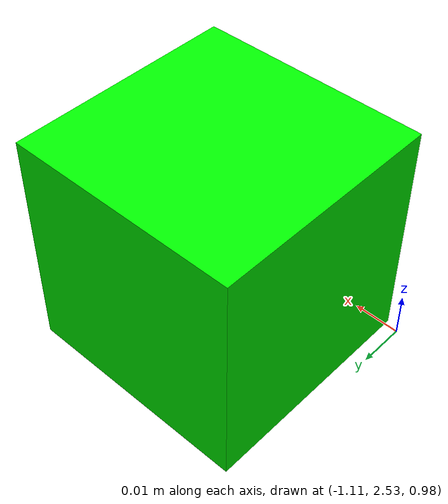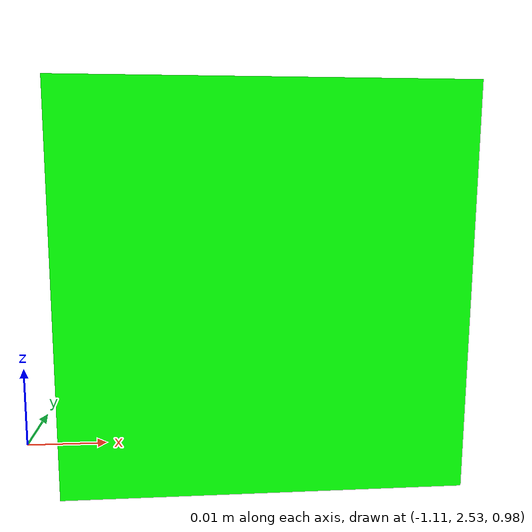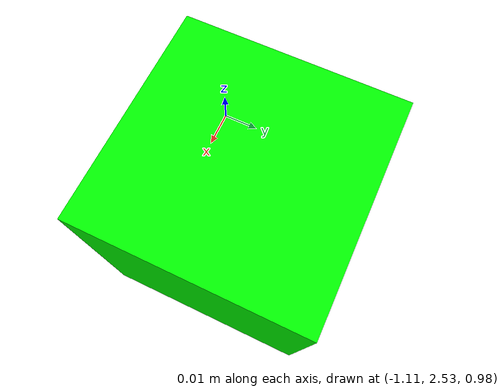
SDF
<sdf version='1.6'>
    <model name='my_box'>
        <pose>-1.08 2.55 1.0 0 0 0</pose>
        <link name='link'>
            <inertial>
                <mass>0.1</mass>
                <inertia>
                    <ixx>0.00004166667</ixx>
                    <iyy>0.00004166667</iyy>
                    <izz>0.00004166667</izz>
                </inertia>
            </inertial>
            <collision name='collision'>
                <geometry>
                    <box>
                        <size>0.05 0.05 0.05</size>
                    </box>
                </geometry>
                <max_contacts>10</max_contacts>
                <surface>
                    <contact>
                        <ode>
                            <max_vel>5.0</max_vel>
                            <min_depth>0.001</min_depth>
                            <kp>10000</kp>
                            <kd>0</kd>
                        </ode>
                    </contact>

                    <bounce>
                        <restitution_coefficient>0.5</restitution_coefficient>                        <!-- "max_vel" must be higher than 0.0 -->
                        <threshold>0.01</threshold>
                    </bounce>

                    <friction>
                        <ode>
                            <mu>0.95</mu>
                            <mu2>0.95</mu2>
                        </ode>
                    </friction>
                </surface>
            </collision>
            <visual name='visual'>
                <geometry>
                    <box>
                        <size>0.05 0.05 0.05</size>
                    </box>
                </geometry>
                <material>
                    <ambient>0 1 0 1</ambient>                    <!-- Green color -->
                </material>
            </visual>
        </link>
    </model>
</sdf>
